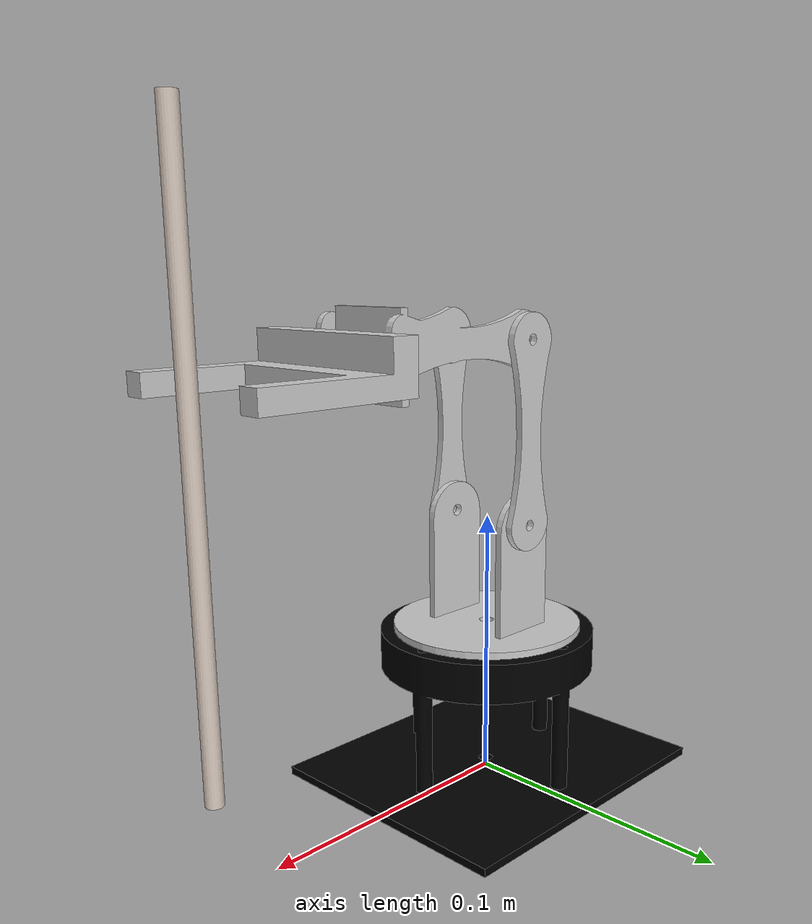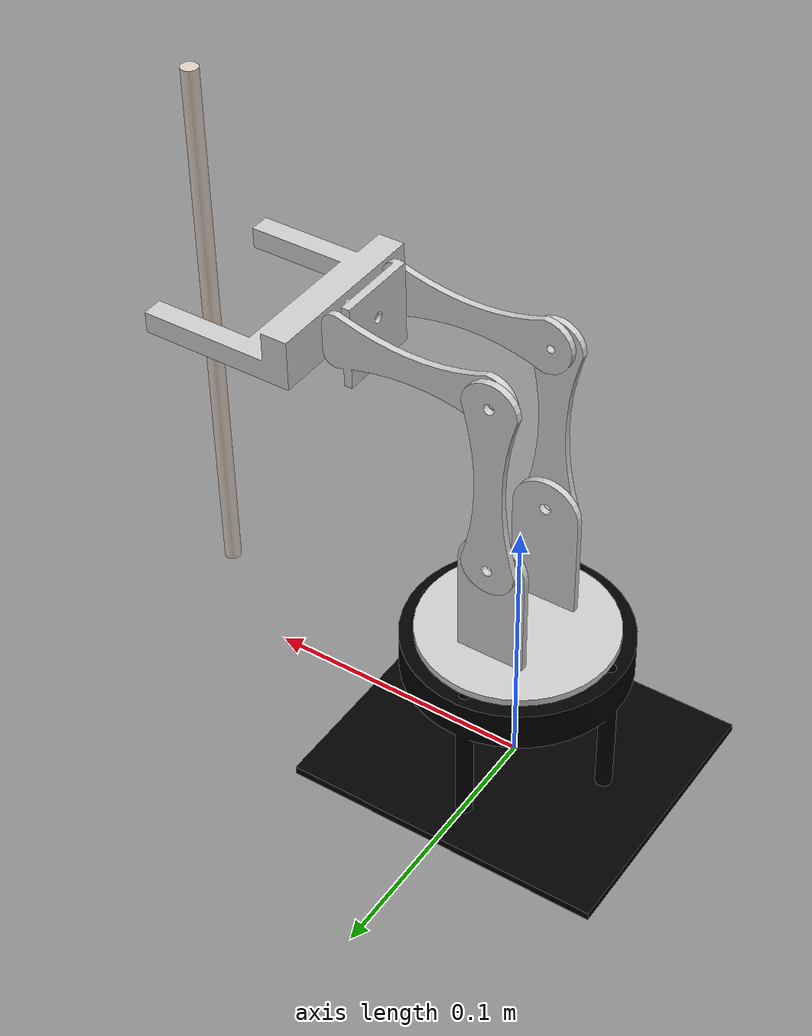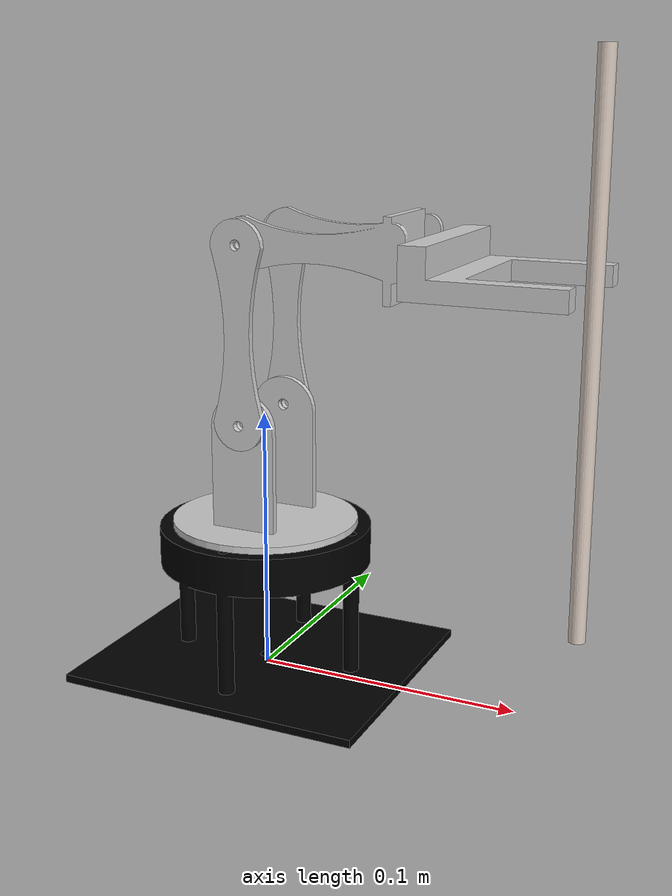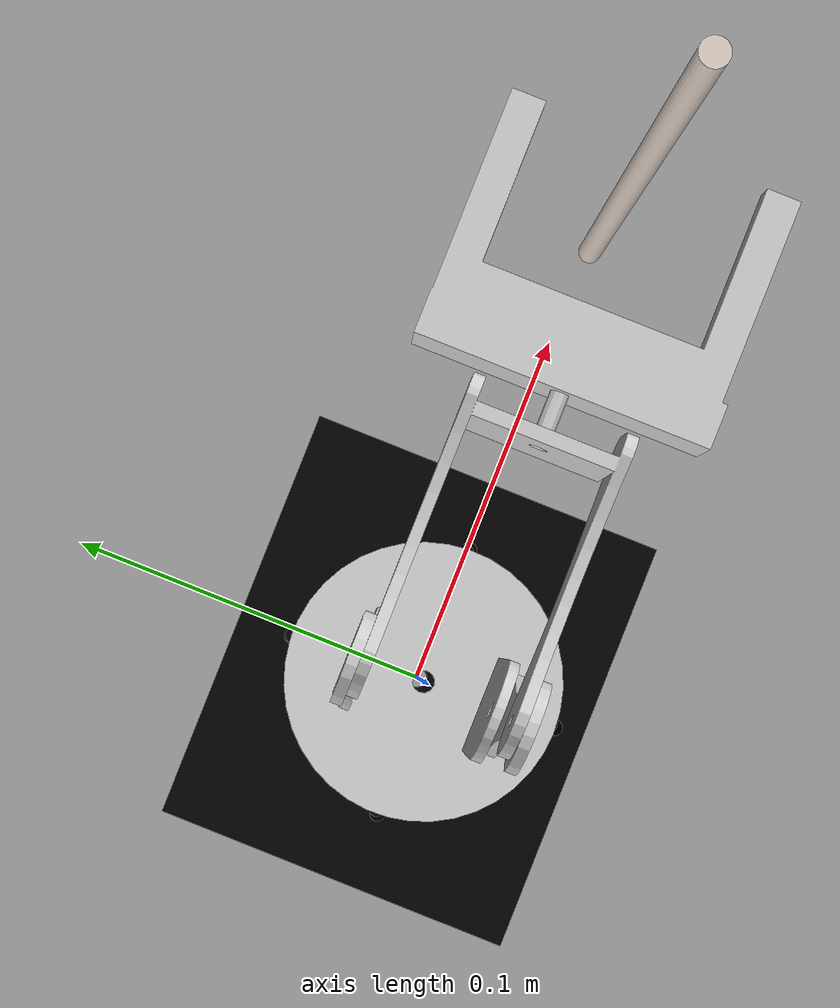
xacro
<?xml version="1.0" encoding="utf-8"?>

<!-- More features were added after convertion-->

<robot
  name="adeept" xmlns:xacro="http://www.ros.org/wiki/xacro">

  <!-- Import Rviz colors -->
  <xacro:include filename="$(find adeept_description)/urdf/materials.xacro" />
  <!-- Import Gazebo colors and controller plugin -->
  <xacro:include filename="$(find adeept_description)/urdf/adeept_description.gazebo" />

  <link
    name="world">
  </link>

  <link
    name="base_link">
    <inertial>
      <origin
        xyz="0 0 0"
        rpy="0 0 0" />
      <mass
        value="0.22" />
      <inertia
        ixx="1.42E-02"
        ixy="0"
        ixz="0"
        iyy="1.20E-02"
        iyz="0"
        izz="2.54E-02" />
    </inertial>
    <visual>
      <origin
        xyz="0 0 0"
        rpy="-1.5708 0 -1.5708" />
      <geometry>
        <mesh
          filename="package://adeept_description/meshes/base_link.STL" />
      </geometry>
      <material name = "black"/>
    </visual>
    <collision>
      <origin
        xyz="0 0 0"
        rpy="-1.5708 0 -1.5708" />
      <geometry>
        <mesh
          filename="package://adeept_description/meshes/base_link.STL" />
      </geometry>
    </collision>
  </link>
  <joint
    name="Joint_0"
    type="fixed">
    <origin
      xyz="0 0 0"
      rpy="0 0 0" />
    <parent
      link="world" />
    <child
      link="base_link" />
    <axis
      xyz="0 0 1" />
  </joint>

  <link
    name="Link_1">
    <inertial>
      <origin
        xyz="0 0 0"
        rpy="0 0 0" />
      <mass
        value="0.150" />
      <inertia
        ixx="4.48E-02"
        ixy="0"
        ixz="0"
        iyy="4.15E-02"
        iyz="0"
        izz="6.16E-02" />
    </inertial>
    <visual>
      <origin
        xyz="0 0 0"
        rpy="0 3.1416 -1.5708" />
      <geometry>
        <mesh
          filename="package://adeept_description/meshes/Link_1.STL" />
      </geometry>
      <material name = "grey"/>
    </visual>
    <collision>
      <origin
        xyz="0 0 0"
        rpy="0 3.1416 -1.5708" />
      <geometry>
        <mesh
          filename="package://adeept_description/meshes/Link_1.STL" />
      </geometry>
    </collision>
  </link>
  <joint
    name="Joint_1"
    type="revolute">
    <origin
      xyz="0 0 0.06"
      rpy="0 0 0" />
    <parent
      link="base_link" />
    <child
      link="Link_1" />
    <axis
      xyz="0 0 1" />
    <limit
      lower="-1.5708"
      upper="1.5708"
      effort="100.0"
      velocity="1.0" />
    <dynamics
      damping="0.2"
      friction="0.1" />
  </joint>

  <link
    name="Link_2">
    <inertial>
      <origin
        xyz="0 0 0"
        rpy="0 0 0" />
      <mass
        value="0.057" />
      <inertia
        ixx="1.14E-02"
        ixy="0"
        ixz="0"
        iyy="3.62E-01"
        iyz="0"
        izz="3.73E-01" />
    </inertial>
    <visual>
      <origin
        xyz="0 0 0.02025"
        rpy="0 0 1.5708" />
      <geometry>
        <mesh
          filename="package://adeept_description/meshes/Link_2.STL" />
      </geometry>
      <material name = "grey"/>
    </visual>
    <collision>
      <origin
        xyz="0 0 0.02025"
        rpy="0 0 1.5708" />
      <geometry>
        <mesh
          filename="package://adeept_description/meshes/Link_2.STL" />
      </geometry>
    </collision>
  </link>
  <joint
    name="Joint_2"
    type="revolute">
    <origin
      xyz="0 0 0.04"
      rpy="1.5708 0 0" />
    <parent
      link="Link_1" />
    <child
      link="Link_2" />
    <axis
      xyz="0 0 1" />
    <limit
      lower="-2.70389"
      upper="0.43611"
      effort="100.0"
      velocity="1.0" />
    <dynamics
      damping="0.2"
      friction="0.1" />
  </joint>

  <link
    name="Link_3">
    <inertial>
      <origin
        xyz="0 0 0"
        rpy="0 0 0" />
      <mass
        value="0.076" />
      <inertia
        ixx="5.58E-02"
        ixy="0"
        ixz="0"
        iyy="2.40E-01"
        iyz="0"
        izz="2.44E-01" />
    </inertial>
    <visual>
      <origin
        xyz="0 0 0.01525"
        rpy="0 0 1.5708" />
      <geometry>
        <mesh
          filename="package://adeept_description/meshes/Link_3.STL" />
      </geometry>
      <material name = "grey"/>
    </visual>
    <collision>
      <origin
        xyz="0 0 0.01525"
        rpy="0 0 1.5708" />
      <geometry>
        <mesh
          filename="package://adeept_description/meshes/Link_3.STL" />
      </geometry>
    </collision>
  </link>
  <joint
    name="Joint_3"
    type="revolute">
    <origin
      xyz="0 0.065 0"
      rpy="3.1416 0 1.5708" />
    <parent
      link="Link_2" />
    <child
      link="Link_3" />
    <axis
      xyz="0 0 1" />
    <limit
      lower="-2.70389"
      upper="0.43611"
      effort="100.0"
      velocity="1.0" />
    <dynamics
      damping="0.2"
      friction="0.1" />
  </joint>

  <link
    name="Link_4">
    <inertial>
      <origin
        xyz="0 0 0"
        rpy="0 0 0" />
      <mass
        value="0.020" />
      <inertia
        ixx="4.39E-02"
        ixy="0"
        ixz="0"
        iyy="9.30E-02"
        iyz="0"
        izz="1.27E-01" />
    </inertial>
    <visual>
      <origin
        xyz="0 0 0.0105"
        rpy="-1.5708 0 1.5708" />
      <geometry>
        <mesh
          filename="package://adeept_description/meshes/Link_4.STL" />
      </geometry>
      <material name = "grey"/>
    </visual>
    <collision>
      <origin
        xyz="0 0 0.0105"
        rpy="-1.5708 0 1.5708" />
      <geometry>
        <mesh
          filename="package://adeept_description/meshes/Link_4.STL" />
      </geometry>
    </collision>
  </link>
  <joint
    name="Joint_4"
    type="revolute">
    <origin
      xyz="0 0.055 0"
      rpy="1.5708 0 3.1416" />
    <parent
      link="Link_3" />
    <child
      link="Link_4" />
    <axis
      xyz="0 0 1" />
    <limit
      lower="-1.48278"
      upper="1.65722"
      effort="100.0"
      velocity="1.0" />
    <dynamics
      damping="0.2"
      friction="0.1" />
  </joint>

  <link
    name="pen">
    <inertial>
      <origin
        xyz="0 0 0"
        rpy="0 0 0" />
      <mass
        value="0.01" />
      <inertia
        ixx="4E-2"
        ixy="0"
        ixz="0"
        iyy="4E-2"
        iyz="0"
        izz="4E-2" />
    </inertial>
    <visual>
      <origin
        xyz="0.02 0 0"
        rpy="0 1.5707 0" />
      <geometry>
        <cylinder radius = "0.003" length="0.2"/>
      </geometry>
      <material name = "brown"/>
    </visual>
    <collision>
      <origin
        xyz="0.027 0 0"
        rpy="0 1.5707 0" />
      <geometry>
        <cylinder radius = "0.003" length="0.2"/>
      </geometry>
    </collision>
  </link>
  <joint
    name="Joint_pen"
    type="prismatic">
    <origin
      xyz="0.013 0 0.0665"
      rpy="0 0 0" />
    <parent
      link="Link_4" />
    <child
      link="pen" />
    <limit
      lower="0"
      upper="0"
      effort="100.0"
      velocity="1.0" />
    <dynamics
      damping="0.2"
      friction="0.1" />
  </joint>

    <link
    name="end">
    <inertial>
      <origin
        xyz="0 0 0"
        rpy="0 0 0" />
      <mass
        value="0.001" />
      <inertia
        ixx="4E-2"
        ixy="0"
        ixz="0"
        iyy="4E-2"
        iyz="0"
        izz="4E-2" />
    </inertial>
    <visual>
      <origin
        xyz="0 0 0"
        rpy="0 0 0" />
      <geometry>
        <sphere radius = "0.001"/>
      </geometry>
      <material name = "black"/>
    </visual>
    <collision>
      <origin
        xyz="0 0 0"
        rpy="0 0 0" />
      <geometry>
        <sphere radius = "0.001"/>
      </geometry>
    </collision>
  </link>
  <joint
    name="pen_end"
    type="prismatic">
    <origin
      xyz="0.12 0 0"
      rpy="0 0 0" />
    <parent
      link="pen" />
    <child
      link="end" />
    <axis
      xyz="0 0 1" />
    <limit
      lower="0"
      upper="0"
      effort="100.0"
      velocity="1.0" />
    <dynamics
      damping="0.2"
      friction="0.1" />
  </joint>

  <!-- Controller -->
  <transmission name="tran1">
    <type>transmission_interface/SimpleTransmission</type>
    <joint name="Joint_1">
      <hardwareInterface>hardware_interface/EffortJointInterface</hardwareInterface>
    </joint>
    <actuator name="motor1">
      <hardwareInterface>hardware_interface/EffortJointInterface</hardwareInterface>
      <mechanicalReduction>1</mechanicalReduction>
    </actuator>
  </transmission>

  <transmission name="tran2">
    <type>transmission_interface/SimpleTransmission</type>
    <joint name="Joint_2">
      <hardwareInterface>hardware_interface/EffortJointInterface</hardwareInterface>
    </joint>
    <actuator name="motor2">
      <hardwareInterface>hardware_interface/EffortJointInterface</hardwareInterface>
      <mechanicalReduction>1</mechanicalReduction>
    </actuator>
  </transmission>

  <transmission name="tran3">
    <type>transmission_interface/SimpleTransmission</type>
    <joint name="Joint_3">
      <hardwareInterface>hardware_interface/EffortJointInterface</hardwareInterface>
    </joint>
    <actuator name="motor3">
      <hardwareInterface>hardware_interface/EffortJointInterface</hardwareInterface>
      <mechanicalReduction>1</mechanicalReduction>
    </actuator>
  </transmission>

    <transmission name="tran4">
    <type>transmission_interface/SimpleTransmission</type>
    <joint name="Joint_4">
      <hardwareInterface>hardware_interface/EffortJointInterface</hardwareInterface>
    </joint>
    <actuator name="motor4">
      <hardwareInterface>hardware_interface/EffortJointInterface</hardwareInterface>
      <mechanicalReduction>1</mechanicalReduction>
    </actuator>
  </transmission>

</robot>

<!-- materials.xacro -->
<robot>

  <!-- Define material -->
  <!-- Notice that this can only be seen in rviz -->

  <material name="black">
    <color rgba="0.0 0.0 0.0 1.0"/>
  </material>

  <material name="blue">
    <color rgba="0.0 0.0 0.8 1.0"/>
  </material>

  <material name="green">
    <color rgba="0.0 0.8 0.0 1.0"/>
  </material>

  <material name="grey">
    <color rgba="0.8 0.8 0.8 1.0"/>
  </material>

  <material name="orange">
    <color rgba="${255/255} ${108/255} ${10/255} 1.0"/>
  </material>

  <material name="brown">
    <color rgba="${222/255} ${207/255} ${195/255} 1.0"/>
  </material>

  <material name="red">
    <color rgba="0.8 0.0 0.0 1.0"/>
  </material>

  <material name="white">
    <color rgba="1.0 1.0 1.0 1.0"/>
  </material>
</robot>
